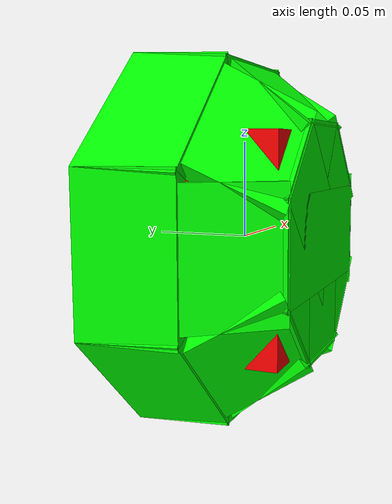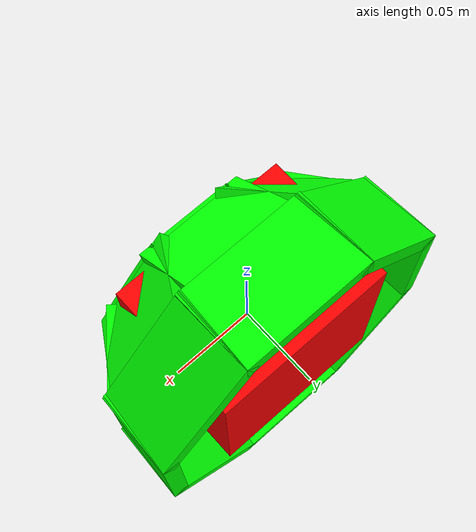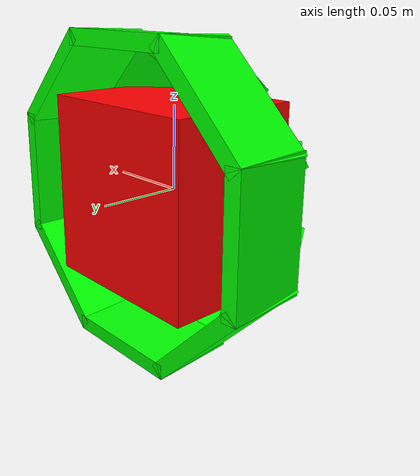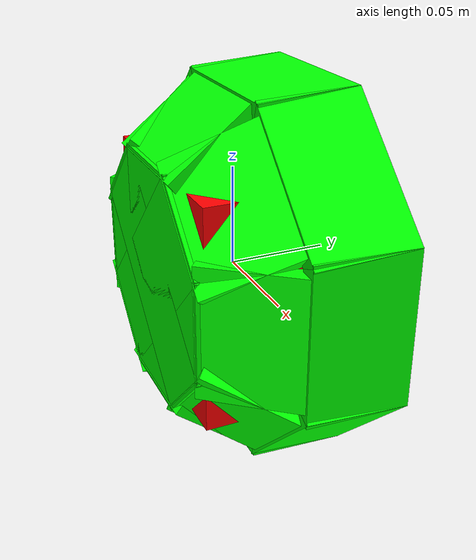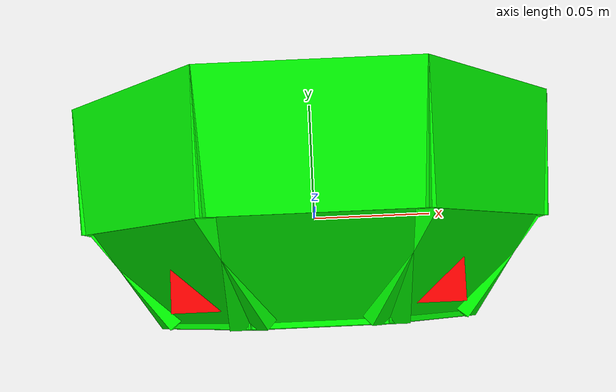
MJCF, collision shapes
<mujoco model="Bowl_1">
  <compiler angle="radian" />
  <default>
    <default class="/">
      <default class="__VISUAL_MJT__">
        <geom contype="0" conaffinity="0" />
      </default>
      <default class="__STRUCTURAL_MJT__">
        <geom contype="8" conaffinity="15" group="4" friction="0.9 0.9 0.001" solref="0.025" solimp="0.998 0.998" />
      </default>
      <default class="__DYNAMIC_MJT__">
        <geom conaffinity="15" group="4" friction="0.9 0.9 0.001" solref="0.025" solimp="0.998 0.998" />
      </default>
    </default>
  </default>
  <asset>
    <material name="material_Bowl_Decals_Off_Mat" class="/" rgba="1.000000 1.000000 1.000000 0.500000" metallic="1.000000" roughness="0.060000" />
    <material name="material_Bowl_Mat1" class="/" rgba="0.478431 0.478431 0.478431 1.000000" metallic="1.000000" roughness="0.380000" />
    <mesh name="Bowl_1_bowl_1_0" class="/" content_type="model/obj" file="assets/Bowl_1_bowl_1/Bowl_1_bowl_1_0.obj" />
    <mesh name="Bowl_1_bowl_1_1" class="/" content_type="model/obj" file="assets/Bowl_1_bowl_1/Bowl_1_bowl_1_1.obj" />
  </asset>
  <worldbody>
    <body name="Bowl_1">
      <joint name="Bowl_1_free" class="/" type="free" limited="false" actuatorfrclimited="false" damping="0.1" />
      <geom name="Bowl_1_bowl_1_0" class="__VISUAL_MJT__" type="mesh" material="material_Bowl_Decals_Off_Mat" mesh="Bowl_1_bowl_1_0" pos="0 -0.04307 0" mass="0"/>
      <geom name="Bowl_1_bowl_1_1" class="__VISUAL_MJT__" type="mesh" material="material_Bowl_Mat1" mesh="Bowl_1_bowl_1_1" pos="0 -0.04307 0" mass="0"/>
      <geom name="Bowl_1_bowl_1_PrimitiveCollider_0" class="__DYNAMIC_MJT__" size="0.0253401 0.00315195 0.0600138" pos="0 -0.0405671 0" quat="0 1 0 0" type="box" rgba="0 1 0 1" density="1138.16"/>
      <geom name="Bowl_1_bowl_1_PrimitiveCollider_1" class="__DYNAMIC_MJT__" size="0.0322071 0.0246885 0.00428922" pos="-0.0495805 -0.0221348 0.0495805" quat="-0.305847 0.871786 0.126686 0.361106" type="box" rgba="0 1 0 1" density="1138.16"/>
      <geom name="Bowl_1_bowl_1_PrimitiveCollider_2" class="__DYNAMIC_MJT__" size="0.0322071 0.0246885 0.00428922" pos="0.0701175 -0.0221348 5.58794e-09" quat="0.234085 -0.667236 0.234085 0.667237" type="box" rgba="0 1 0 1" density="1138.16"/>
      <geom name="Bowl_1_bowl_1_PrimitiveCollider_3" class="__DYNAMIC_MJT__" size="0.0322071 0.0246885 0.00428922" pos="-0.0701175 -0.0221348 -6.98492e-10" quat="-0.234085 0.667236 0.234085 0.667236" type="box" rgba="0 1 0 1" density="1138.16"/>
      <geom name="Bowl_1_bowl_1_PrimitiveCollider_4" class="__DYNAMIC_MJT__" size="0.0322071 0.0246885 0.00428922" pos="1.12505e-09 -0.0221348 0.0701175" quat="-0.331046 0.943615 4.47035e-08 -5.96046e-08" type="box" rgba="0 1 0 1" density="1138.16"/>
      <geom name="Bowl_1_bowl_1_PrimitiveCollider_5" class="__DYNAMIC_MJT__" size="0.0322071 0.0246885 0.00428922" pos="0.0495805 -0.0221348 0.0495805" quat="-0.305847 0.871786 -0.126686 -0.361106" type="box" rgba="0 1 0 1" density="1138.16"/>
      <geom name="Bowl_1_bowl_1_PrimitiveCollider_6" class="__DYNAMIC_MJT__" size="0.0322071 0.0246885 0.00428923" pos="0.0495805 -0.0221348 -0.0495806" quat="0.126686 -0.361105 0.305847 0.871786" type="box" rgba="0 1 0 1" density="1138.16"/>
      <geom name="Bowl_1_bowl_1_PrimitiveCollider_7" class="__DYNAMIC_MJT__" size="0.0322072 0.0246885 0.00428924" pos="7.20376e-09 -0.0221348 -0.0701175" quat="-8.9407e-08 4.17232e-07 0.331046 0.943615" type="box" rgba="0 1 0 1" density="1138.16"/>
      <geom name="Bowl_1_bowl_1_PrimitiveCollider_8" class="__DYNAMIC_MJT__" size="0.0322071 0.0246885 0.00428923" pos="-0.0495805 -0.0221348 -0.0495805" quat="-0.126686 0.361106 0.305847 0.871786" type="box" rgba="0 1 0 1" density="1138.16"/>
      <geom name="Bowl_1_bowl_1_PrimitiveCollider_9" class="__DYNAMIC_MJT__" size="0.0386956 0.0247466 0.00468779" pos="-0.0868592 0.0190858 4.65661e-10" quat="-0.0227244 0.706742 0.0227244 0.706741" type="box" rgba="0 1 0 1" density="1138.16"/>
      <geom name="Bowl_1_bowl_1_PrimitiveCollider_10" class="__DYNAMIC_MJT__" size="0.0386956 0.0247467 0.0046878" pos="-0.0614187 0.0190858 0.0614187" quat="-0.0296909 0.923402 0.0122984 0.382486" type="box" rgba="0 1 0 1" density="1138.16"/>
      <geom name="Bowl_1_bowl_1_PrimitiveCollider_11" class="__DYNAMIC_MJT__" size="0.0386956 0.0247466 0.0046878" pos="7.45644e-11 0.0190858 0.0868592" quat="-0.0321372 0.999483 -3.72529e-09 -2.98023e-08" type="box" rgba="0 1 0 1" density="1138.16"/>
      <geom name="Bowl_1_bowl_1_PrimitiveCollider_12" class="__DYNAMIC_MJT__" size="0.0386956 0.0247467 0.0046878" pos="0.0614187 0.0190858 0.0614187" quat="-0.0296909 0.923402 -0.0122984 -0.382486" type="box" rgba="0 1 0 1" density="1138.16"/>
      <geom name="Bowl_1_bowl_1_PrimitiveCollider_13" class="__DYNAMIC_MJT__" size="0.0386956 0.0247466 0.00468779" pos="0.0868592 0.0190858 -1.86265e-09" quat="0.0227244 -0.706741 0.0227244 0.706742" type="box" rgba="0 1 0 1" density="1138.16"/>
      <geom name="Bowl_1_bowl_1_PrimitiveCollider_14" class="__DYNAMIC_MJT__" size="0.0386956 0.0247467 0.0046878" pos="0.0614187 0.0190858 -0.0614187" quat="0.0122984 -0.382485 0.0296909 0.923402" type="box" rgba="0 1 0 1" density="1138.16"/>
      <geom name="Bowl_1_bowl_1_PrimitiveCollider_15" class="__DYNAMIC_MJT__" size="0.0386956 0.0247466 0.0046878" pos="-2.47046e-09 0.0190858 -0.0868592" quat="-1.67638e-08 4.76837e-07 0.0321372 0.999483" type="box" rgba="0 1 0 1" density="1138.16"/>
      <geom name="Bowl_1_bowl_1_PrimitiveCollider_16" class="__DYNAMIC_MJT__" size="0.0386956 0.0247467 0.0046878" pos="-0.0614187 0.0190858 -0.0614187" quat="-0.0122984 0.382486 0.0296909 0.923402" type="box" rgba="0 1 0 1" density="1138.16"/>
      <geom name="Bowl_1_bowl_1_PrimitiveCollider_17" class="__DYNAMIC_MJT__" size="0.0253402 0.00315195 0.0600138" pos="0 -0.0405671 0" quat="0 0.707107 0 0.707107" type="box" rgba="0 1 0 1" density="1138.16"/>
      <geom name="Bowl_1_bowl_1_PrimitiveCollider_18" class="__DYNAMIC_MJT__" size="0.0253401 0.00315195 0.0600138" pos="0 -0.0405671 0" quat="0 0.92388 0 0.382683" type="box" rgba="0 1 0 1" density="1138.16"/>
      <geom name="Bowl_1_bowl_1_PrimitiveCollider_19" class="__DYNAMIC_MJT__" size="0.0253402 0.00315195 0.0600138" pos="0 -0.0405671 0" quat="0 0.382684 0 0.923879" type="box" rgba="0 1 0 1" density="1138.16"/>
      <site name="Bowl_1_bowl_1_ReceptacleCollider_0" class="/" pos="0 0.0036339 0" quat="0 1 0 0" size="0.0535514 0.0407316 0.0546596" type="box" rgba="1 0 0 1" />
    </body>
  </worldbody>
  <keyframe>
    <key name="upright" qpos="0 0 0.046 0.707107 0.707107 0 0" />
  </keyframe>
</mujoco>
